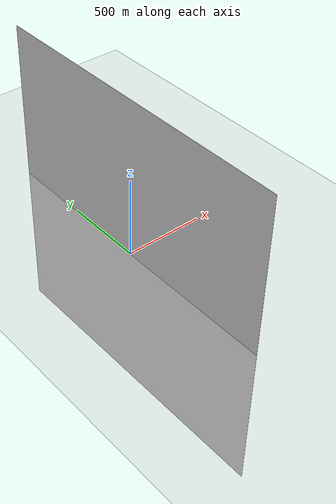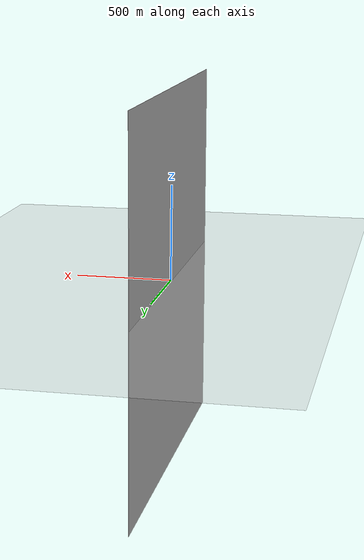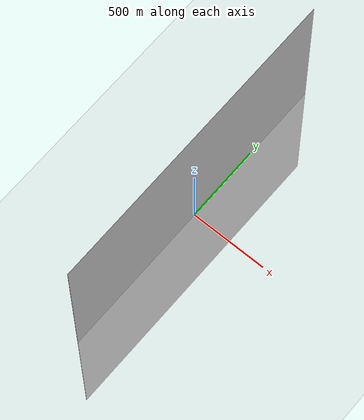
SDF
<?xml version="1.0" ?>
<!--
  Gazebo ROS camera with pincushion distortion plugin demo

  Try for example:

  * Launch RViz and visualize Images from `/camera_pincushion/image_raw/raw`

-->
<sdf version="1.6">
  <world name="default">

    <include>
      <uri>model://sun</uri>
    </include>

    <model name="ground_plane">
      <static>true</static>
      <link name="link">
        <collision name="collision">
          <geometry>
            <plane>
              <normal>0 0 1</normal>
              <size>100 100</size>
            </plane>
          </geometry>
          <surface>
            <friction>
              <ode>
                <mu>100</mu>
                <mu2>50</mu2>
              </ode>
            </friction>
              <bounce>
                <restitution_coefficient>1.0</restitution_coefficient>
                <threshold>0</threshold>
              </bounce>
              <contact>
                <ode>
                  <max_vel>10000</max_vel>
                  <min_depth>0.001</min_depth>
                </ode>
              </contact>
          </surface>
        </collision>
        <visual name="visual">
          <cast_shadows>false</cast_shadows>
          <geometry>
            <plane>
              <normal>0 0 1</normal>
              <size>100 100</size>
            </plane>
          </geometry>
          <material>
            <script>
              <uri>file://media/materials/scripts/gazebo.material</uri>
              <name>Gazebo/Grey</name>
            </script>
          </material>
        </visual>
      </link>
    </model>

    <model name="ball">
      <allow_auto_disable>false</allow_auto_disable>
      <pose>-1 0 1 0 0 0</pose>
      <static>false</static>
      <link name="link">
        <inertial>
          <mass>0.026</mass>
          <!-- inertia based on solid sphere 2/5 mr^2 -->
          <inertia>
            <ixx>1.664e-5</ixx>
            <iyy>1.664e-5</iyy>
            <izz>1.664e-5</izz>
            <ixy>0</ixy>
            <ixz>0</ixz>
            <iyz>0</iyz>
          </inertia>
        </inertial>
        <collision name="collision">
          <geometry>
            <sphere>
              <radius>0.04</radius>
            </sphere>
          </geometry>
          <surface>
            <bounce>
              <restitution_coefficient>1.0</restitution_coefficient>
              <threshold>0</threshold>
            </bounce>
            <contact>
              <ode>
                <max_vel>10000</max_vel>
                <min_depth>0.001</min_depth>
              </ode>
            </contact>
          </surface>
        </collision>
        <visual name="visual">
          <geometry>
            <sphere>
              <radius>0.04</radius>
            </sphere>
          </geometry>
        </visual>
      </link>
    </model>

    <model name="camera_pincushion">
      <pose>0 0 0.5 0 0 3.14</pose>
      <static>true</static>
      <link name="pincushion">
        <sensor type="camera" name="camera_pincushion">
          <update_rate>60</update_rate>
          <visualize>true</visualize>
          <camera name="head">
            <horizontal_fov>0.927295218</horizontal_fov>
            <image>
              <width>640</width>
              <height>480</height>
              <format>R8G8B8</format>
            </image>
            <clip>
              <near>0.02</near>
              <far>300</far>
            </clip>
            <distortion>
              <k1>0.1</k1>
              <k2>0.1</k2>
              <p1>0</p1>
              <p2>0</p2>
              <k3>0.1</k3>
              <center>0.5 0.5</center>
            </distortion>
          </camera>
          <plugin name="camera_controller" filename="libgazebo_ros_camera.so">
            <border_crop>false</border_crop>
          </plugin>
        </sensor>
      </link>
    </model>

    <include>
      <pose>-1.5 0 1 0 1.57 0</pose>
      <uri>model://checkerboard_plane</uri>
    </include>
  </world>
</sdf>

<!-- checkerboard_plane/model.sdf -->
<sdf version="1.5">
  <model name="checkerboard_plane">
    <static>true</static>
    <link name="link">
      <collision name="collision">
        <geometry>
          <plane>
            <normal>0 0 1</normal>
            <size>2000 2000</size>
          </plane>
        </geometry>
        <surface>
          <friction>
            <ode>
              <mu>100</mu>
              <mu2>50</mu2>
            </ode>
          </friction>
        </surface>
      </collision>
      <visual name="visual">
        <cast_shadows>false</cast_shadows>
        <geometry>
          <plane>
            <normal>0 0 1</normal>
            <size>2000 2000</size>
          </plane>
        </geometry>
        <material>
          <script>
            <uri>model://checkerboard_plane/materials/scripts</uri>
            <uri>model://checkerboard_plane/materials/textures</uri>
            <name>Checkerboard/Checkerboard</name>
          </script>
        </material>
      </visual>
    </link>
  </model>
</sdf>
